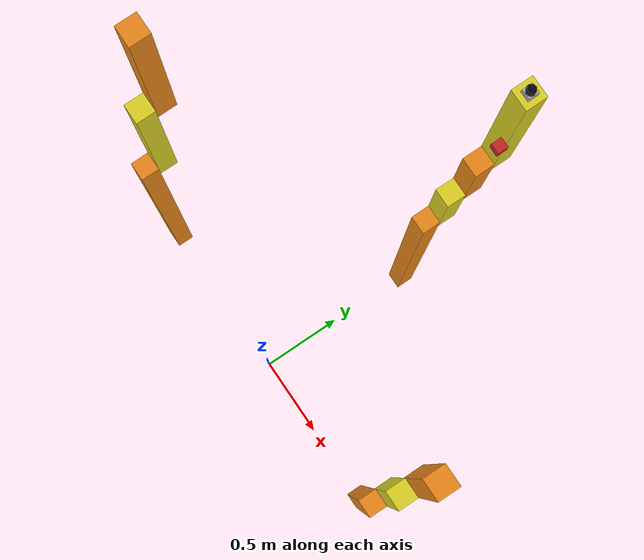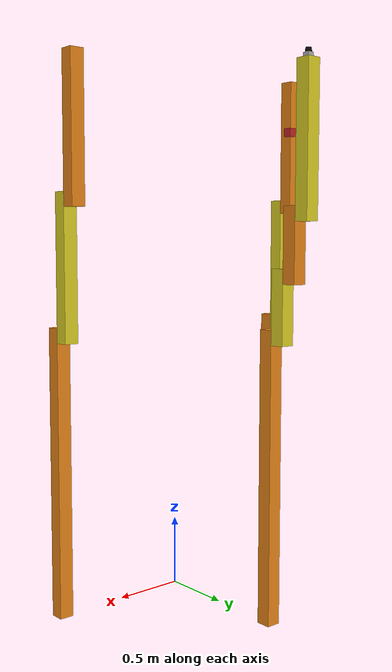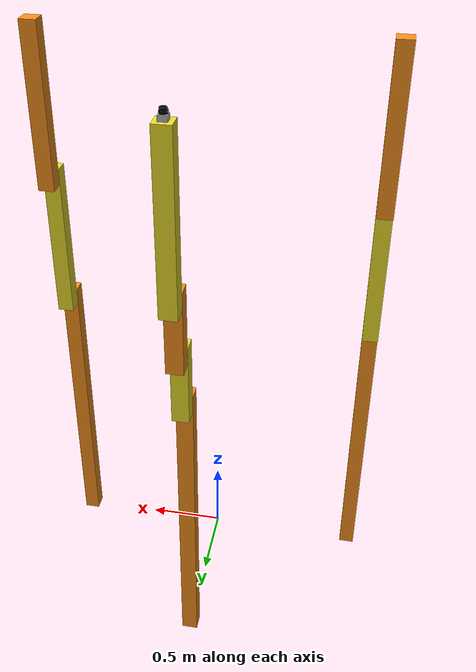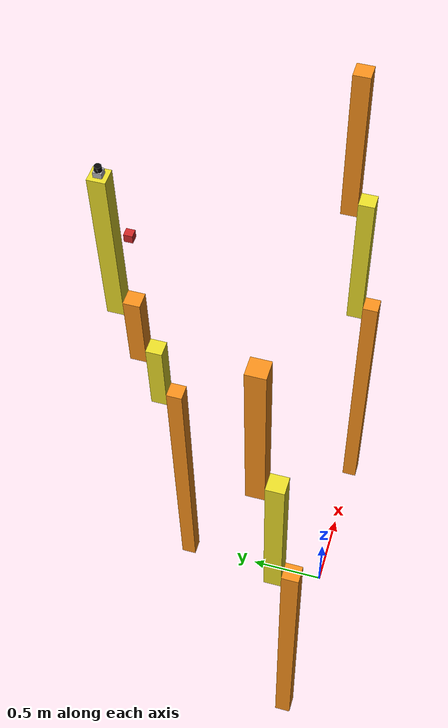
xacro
<?xml version="1.0"?>
<!-- Multi-robot example -->
<robot xmlns:xacro="http://www.ros.org/wiki/xacro" name="multi_robot_example">
  <xacro:arg name="prefix" default="" />
  <xacro:arg name="use_sim" default="false" />

  <!-- Enable setting arguments from the launch file -->
  <xacro:arg name="fake_sensor_commands" default="false" />
  <xacro:arg name="slowdown" default="2.0" />

  <!-- Import RRBot macro -->
  <xacro:include filename="$(find rrbot_description)/urdf/rrbot_description.urdf.xacro" />

  <!-- Import ThreeDofbot macro -->
  <xacro:include filename="$(find rrbot_description)/urdf/threedofbot_description.urdf.xacro" />

  <!-- Import Rviz colors -->
  <xacro:include filename="$(find rrbot_description)/gazebo/rrbot.materials.xacro" />

  <!-- Import RRBot ros2_control description -->
  <xacro:include filename="$(find rrbot_description)/ros2_control/rrbot_system_position_only.ros2_control.xacro" />

  <!-- Import RRBot external Force Torque Sensor description -->
  <xacro:include filename="$(find rrbot_description)/ros2_control/external_rrbot_force_torque_sensor.ros2_control.xacro" />

  <!-- Import RRBot with force-torque sensor ros2_control description -->
  <xacro:include filename="$(find rrbot_description)/ros2_control/rrbot_system_with_sensor.ros2_control.xacro" />

  <!-- Import TreeDofbot ros2_control description -->
  <xacro:include filename="$(find rrbot_description)/ros2_control/threedofbot.ros2_control.xacro" />

  <!-- Used for fixing robot -->
  <link name="world"/>

  <xacro:rrbot parent="world" prefix="rrbot_">
    <origin xyz="1 0 0" rpy="0 0 0" />
  </xacro:rrbot>

  <xacro:rrbot_system_position_only
    name="RRBotSystemPositionOnly" prefix="rrbot_"
    use_fake_hardware="false"
    fake_sensor_commands="false"
    slowdown="$(arg slowdown)" />

  <xacro:external_rrbot_force_torque_sensor
    name="ExternalRRBotFTSensor" prefix="rrbot_"
    use_fake_hardware="false"
    fake_sensor_commands="false" />

  <xacro:rrbot parent="world" prefix="rrbot_with_sensor_">
    <origin xyz="-1 0 0" rpy="0 0 0" />
  </xacro:rrbot>

  <xacro:rrbot_system_with_sensor
    name="RRBotSystemWithSensor" prefix="rrbot_with_sensor_"
    use_fake_hardware="false"
    fake_sensor_commands="false"
    slowdown="$(arg slowdown)" />

  <xacro:threedofbot parent="world" prefix="threedofbot_">
    <origin xyz="0 1 0" rpy="0 0 0" />
  </xacro:threedofbot>

  <xacro:threedofbot_fake_hardware
    name="FakeThreeDofBot" prefix="threedofbot_"/>

</robot>

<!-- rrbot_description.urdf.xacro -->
<robot xmlns:xacro="http://www.ros.org/wiki/xacro">

  <xacro:macro name="rrbot" params="parent prefix *origin">

  <!-- Constants for robot dimensions -->
  <xacro:property name="mass" value="1" /> <!-- arbitrary value for mass -->
  <xacro:property name="width" value="0.1" /> <!-- Square dimensions (widthxwidth) of beams -->
  <xacro:property name="height1" value="2" /> <!-- Link 1 -->
  <xacro:property name="height2" value="1" /> <!-- Link 2 -->
  <xacro:property name="height3" value="1" /> <!-- Link 3 -->
  <xacro:property name="axel_offset" value="0.05" /> <!-- Space btw top of beam and the each joint -->

  <joint name="${prefix}base_joint" type="fixed">
    <xacro:insert_block name="origin" />
    <parent link="${parent}"/>
    <child link="${prefix}base_link" />
  </joint>

  <!-- Base Link -->
  <link name="${prefix}base_link">
    <collision>
      <origin xyz="0 0 ${height1/2}" rpy="0 0 0"/>
      <geometry>
        <box size="${width} ${width} ${height1}"/>
      </geometry>
    </collision>

    <visual>
      <origin xyz="0 0 ${height1/2}" rpy="0 0 0"/>
      <geometry>
        <box size="${width} ${width} ${height1}"/>
      </geometry>
      <material name="orange"/>
    </visual>

    <inertial>
      <origin xyz="0 0 ${height1/2}" rpy="0 0 0"/>
      <mass value="${mass}"/>
      <inertia
        ixx="${mass / 12.0 * (width*width + height1*height1)}" ixy="0.0" ixz="0.0"
        iyy="${mass / 12.0 * (height1*height1 + width*width)}" iyz="0.0"
        izz="${mass / 12.0 * (width*width + width*width)}"/>
    </inertial>
  </link>

  <joint name="${prefix}joint1" type="continuous">
    <parent link="${prefix}base_link"/>
    <child link="${prefix}link1"/>
    <origin xyz="0 ${width} ${height1 - axel_offset}" rpy="0 0 0"/>
    <axis xyz="0 1 0"/>
    <dynamics damping="0.7"/>
    <limit effort="100" velocity="1.0"/>
  </joint>

  <!-- Middle Link -->
  <link name="${prefix}link1">
    <collision>
      <origin xyz="0 0 ${height2/2 - axel_offset}" rpy="0 0 0"/>
      <geometry>
        <box size="${width} ${width} ${height2}"/>
      </geometry>
    </collision>

    <visual>
      <origin xyz="0 0 ${height2/2 - axel_offset}" rpy="0 0 0"/>
      <geometry>
        <box size="${width} ${width} ${height2}"/>
      </geometry>
      <material name="yellow"/>
    </visual>

    <inertial>
      <origin xyz="0 0 ${height2/2 - axel_offset}" rpy="0 0 0"/>
      <mass value="${mass}"/>
      <inertia
        ixx="${mass / 12.0 * (width*width + height2*height2)}" ixy="0.0" ixz="0.0"
        iyy="${mass / 12.0 * (height2*height2 + width*width)}" iyz="0.0"
        izz="${mass / 12.0 * (width*width + width*width)}"/>
    </inertial>
  </link>

  <joint name="${prefix}joint2" type="continuous">
    <parent link="${prefix}link1"/>
    <child link="${prefix}link2"/>
    <origin xyz="0 ${width} ${height2 - axel_offset*2}" rpy="0 0 0"/>
    <axis xyz="0 1 0"/>
    <dynamics damping="0.7"/>
    <limit effort="100" velocity="1.0"/>
  </joint>

  <!-- Top Link -->
  <link name="${prefix}link2">
    <collision>
      <origin xyz="0 0 ${height3/2 - axel_offset}" rpy="0 0 0"/>
      <geometry>
        <box size="${width} ${width} ${height3}"/>
      </geometry>
    </collision>

    <visual>
      <origin xyz="0 0 ${height3/2 - axel_offset}" rpy="0 0 0"/>
      <geometry>
        <box size="${width} ${width} ${height3}"/>
      </geometry>
      <material name="orange"/>
    </visual>

    <inertial>
      <origin xyz="0 0 ${height3/2 - axel_offset}" rpy="0 0 0"/>
      <mass value="${mass}"/>
      <inertia
        ixx="${mass / 12.0 * (width*width + height3*height3)}" ixy="0.0" ixz="0.0"
        iyy="${mass / 12.0 * (height3*height3 + width*width)}" iyz="0.0"
        izz="${mass / 12.0 * (width*width + width*width)}"/>
    </inertial>
  </link>

  <joint name="${prefix}tool_joint" type="fixed">
    <origin xyz="0 0 1" rpy="0 0 0" />
    <parent link="${prefix}link2"/>
    <child link="${prefix}tool_link" />
  </joint>

  <!-- Tool Link -->
  <link name="${prefix}tool_link">
  </link>

  </xacro:macro>

</robot>

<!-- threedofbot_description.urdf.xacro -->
<robot xmlns:xacro="http://www.ros.org/wiki/xacro">

  <xacro:macro name="threedofbot" params="parent prefix *origin">

  <!-- Constants for robot dimensions -->
  <xacro:property name="mass" value="1" /> <!-- arbitrary value for mass -->
  <xacro:property name="width" value="0.1" /> <!-- Square dimensions (widthxwidth) of beams -->
  <xacro:property name="height1" value="2" /> <!-- Link 1 -->
  <xacro:property name="height2" value="0.5" /> <!-- Link 2 -->
  <xacro:property name="height3" value="0.5" /> <!-- Link 3 -->
  <xacro:property name="height4" value="1" /> <!-- Link 3 -->
  <xacro:property name="camera_link" value="0.05" /> <!-- Size of square 'camera' box -->
  <xacro:property name="axel_offset" value="0.05" /> <!-- Space btw top of beam and the each joint -->

  <joint name="${prefix}base_joint" type="fixed">
    <xacro:insert_block name="origin" />
    <parent link="${parent}"/>
    <child link="${prefix}base_link" />
  </joint>

  <!-- Base Link -->
  <link name="${prefix}base_link">
    <collision>
      <origin xyz="0 0 ${height1/2}" rpy="0 0 0"/>
      <geometry>
        <box size="${width} ${width} ${height1}"/>
      </geometry>
    </collision>

    <visual>
      <origin xyz="0 0 ${height1/2}" rpy="0 0 0"/>
      <geometry>
        <box size="${width} ${width} ${height1}"/>
      </geometry>
      <material name="orange"/>
    </visual>

    <inertial>
      <origin xyz="0 0 ${height1/2}" rpy="0 0 0"/>
      <mass value="${mass}"/>
      <inertia
        ixx="${mass / 12.0 * (width*width + height1*height1)}" ixy="0.0" ixz="0.0"
        iyy="${mass / 12.0 * (height1*height1 + width*width)}" iyz="0.0"
        izz="${mass / 12.0 * (width*width + width*width)}"/>
      </inertial>
    </link>

    <joint name="${prefix}joint1" type="continuous">
      <parent link="${prefix}base_link"/>
      <child link="${prefix}link1"/>
      <origin xyz="0 ${width} ${height1 - axel_offset}" rpy="0 0 0"/>
      <axis xyz="0 1 0"/>
      <dynamics damping="0.7"/>
    </joint>

    <!-- Middle Link -->
    <link name="${prefix}link1">
      <collision>
        <origin xyz="0 0 ${height2/2 - axel_offset}" rpy="0 0 0"/>
        <geometry>
          <box size="${width} ${width} ${height2}"/>
        </geometry>
      </collision>

      <visual>
        <origin xyz="0 0 ${height2/2 - axel_offset}" rpy="0 0 0"/>
        <geometry>
          <box size="${width} ${width} ${height2}"/>
        </geometry>
        <material name="yellow"/>
      </visual>

      <inertial>
        <origin xyz="0 0 ${height2/2 - axel_offset}" rpy="0 0 0"/>
        <mass value="${mass}"/>
        <inertia
          ixx="${mass / 12.0 * (width*width + height2*height2)}" ixy="0.0" ixz="0.0"
          iyy="${mass / 12.0 * (height2*height2 + width*width)}" iyz="0.0"
          izz="${mass / 12.0 * (width*width + width*width)}"/>
        </inertial>
      </link>

      <joint name="${prefix}joint2" type="continuous">
        <parent link="${prefix}link1"/>
        <child link="${prefix}link2"/>
        <origin xyz="0 ${width} ${height2 - axel_offset*2}" rpy="0 0 0"/>
        <axis xyz="0 1 0"/>
        <dynamics damping="0.7"/>
      </joint>

      <!-- Middle Link -->
      <link name="${prefix}link2">
        <collision>
          <origin xyz="0 0 ${height3/2 - axel_offset}" rpy="0 0 0"/>
          <geometry>
            <box size="${width} ${width} ${height3}"/>
          </geometry>
        </collision>

        <visual>
          <origin xyz="0 0 ${height3/2 - axel_offset}" rpy="0 0 0"/>
          <geometry>
            <box size="${width} ${width} ${height3}"/>
          </geometry>
          <material name="orange"/>
        </visual>

        <inertial>
          <origin xyz="0 0 ${height3/2 - axel_offset}" rpy="0 0 0"/>
          <mass value="${mass}"/>
          <inertia
            ixx="${mass / 12.0 * (width*width + height3*height3)}" ixy="0.0" ixz="0.0"
            iyy="${mass / 12.0 * (height3*height3 + width*width)}" iyz="0.0"
            izz="${mass / 12.0 * (width*width + width*width)}"/>
          </inertial>
        </link>

        <joint name="${prefix}joint3" type="continuous">
          <parent link="${prefix}link2"/>
          <child link="${prefix}link3"/>
          <origin xyz="0 ${width} ${height3 - axel_offset*2}" rpy="0 0 0"/>
          <axis xyz="0 1 0"/>
          <dynamics damping="0.7"/>
        </joint>

        <!-- Top Link -->
        <link name="${prefix}link3">
          <collision>
            <origin xyz="0 0 ${height4/2 - axel_offset}" rpy="0 0 0"/>
            <geometry>
              <box size="${width} ${width} ${height4}"/>
            </geometry>
          </collision>

          <visual>
            <origin xyz="0 0 ${height4/2 - axel_offset}" rpy="0 0 0"/>
            <geometry>
              <box size="${width} ${width} ${height4}"/>
            </geometry>
            <material name="yellow"/>
          </visual>

          <inertial>
            <origin xyz="0 0 ${height4/2 - axel_offset}" rpy="0 0 0"/>
            <mass value="${mass}"/>
            <inertia
              ixx="${mass / 12.0 * (width*width + height4*height4)}" ixy="0.0" ixz="0.0"
              iyy="${mass / 12.0 * (height4*height4 + width*width)}" iyz="0.0"
              izz="${mass / 12.0 * (width*width + width*width)}"/>
            </inertial>
          </link>

        <joint name="${prefix}tool_joint" type="fixed">
          <origin xyz="0 0 1" rpy="0 0 0" />
          <parent link="${prefix}link3"/>
          <child link="${prefix}tool_link" />
        </joint>

        <!-- Tool Link -->
        <link name="${prefix}tool_link">
        </link>

        <joint name="${prefix}hokuyo_joint" type="fixed">
          <axis xyz="0 1 0" />
          <origin xyz="0 0 ${height4 - axel_offset/2}" rpy="0 0 0"/>
          <parent link="${prefix}link3"/>
          <child link="${prefix}hokuyo_link"/>
        </joint>

        <!-- Hokuyo Laser -->
        <link name="${prefix}hokuyo_link">
          <collision>
            <origin xyz="0 0 0" rpy="0 0 0"/>
            <geometry>
              <box size="0.1 0.1 0.1"/>
            </geometry>
          </collision>

          <visual>
            <origin xyz="0 0 0" rpy="0 0 0"/>
            <geometry>
              <mesh filename="package://rrbot_description/meshes/hokuyo.dae"/>
            </geometry>
          </visual>

          <inertial>
            <mass value="1e-5" />
            <origin xyz="0 0 0" rpy="0 0 0"/>
            <inertia ixx="1e-6" ixy="0" ixz="0" iyy="1e-6" iyz="0" izz="1e-6" />
          </inertial>
        </link>

        <joint name="${prefix}camera_joint" type="fixed">
          <axis xyz="0 1 0" />
          <origin xyz="${camera_link} 0 ${height4 - axel_offset*2}" rpy="0 0 0"/>
          <parent link="${prefix}link2"/>
          <child link="${prefix}camera_link"/>
        </joint>

        <!-- Camera -->
        <link name="${prefix}camera_link">
          <collision>
            <origin xyz="0 0 0" rpy="0 0 0"/>
            <geometry>
              <box size="${camera_link} ${camera_link} ${camera_link}"/>
            </geometry>
          </collision>

          <visual>
            <origin xyz="0 0 0" rpy="0 0 0"/>
            <geometry>
              <box size="${camera_link} ${camera_link} ${camera_link}"/>
            </geometry>
            <material name="red"/>
          </visual>

          <inertial>
            <mass value="1e-5" />
            <origin xyz="0 0 0" rpy="0 0 0"/>
            <inertia ixx="1e-6" ixy="0" ixz="0" iyy="1e-6" iyz="0" izz="1e-6" />
          </inertial>
        </link>

        <!-- generate an optical frame http://www.ros.org/reps/rep-0103.html#suffix-frames
        so that ros and opencv can operate on the camera frame correctly -->
        <joint name="${prefix}camera_optical_joint" type="fixed">
          <!-- these values have to be these values otherwise the gazebo camera image
          won't be aligned properly with the frame it is supposedly originating from -->
          <origin xyz="0 0 0" rpy="${-pi/2} 0 ${-pi/2}"/>
          <parent link="${prefix}camera_link"/>
          <child link="${prefix}camera_link_optical"/>
        </joint>

        <link name="${prefix}camera_link_optical">
        </link>

  </xacro:macro>

</robot>
